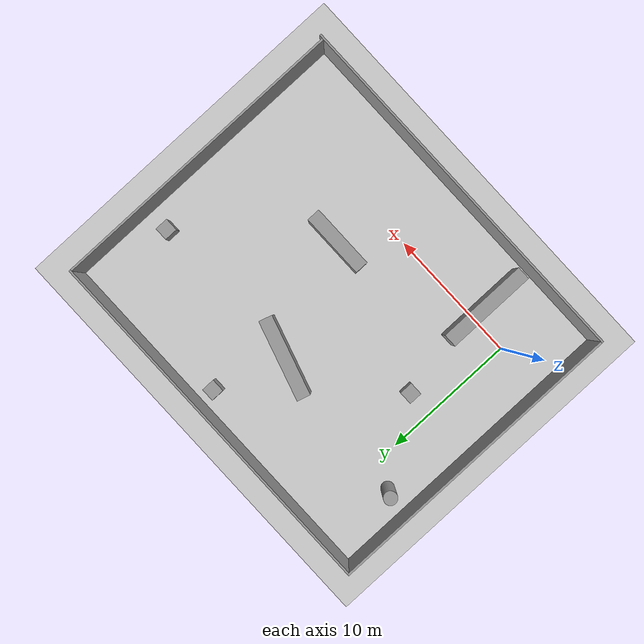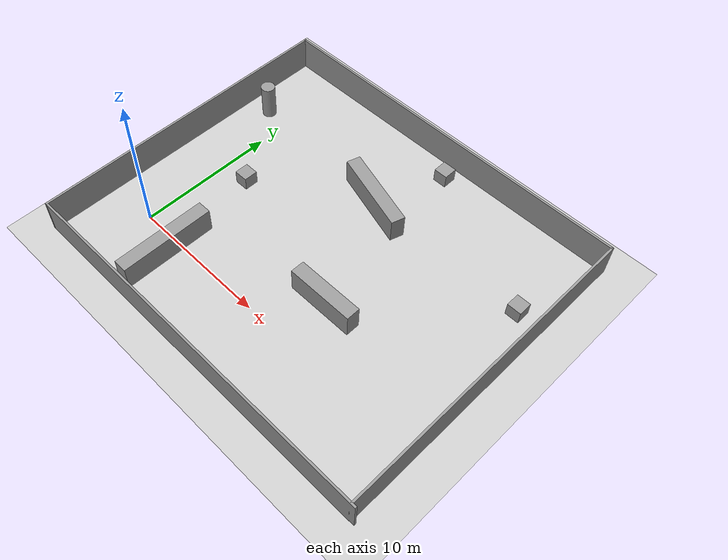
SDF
<sdf version="1.7">
 <world name="default">
  <light name="sun" type="directional">
   <pose>0 0 10 0 -0 0</pose>
   <diffuse>0.8 0.8 0.8 1</diffuse>
   <specular>0.2 0.2 0.2 1</specular>
   <attenuation>
    <range>1000</range>
    <constant>0.9</constant>
    <linear>0.01</linear>
    <quadratic>0.001</quadratic>
   </attenuation>
   <direction>-0.5 0.1 -0.9</direction>
   <spot><inner_angle>0</inner_angle><outer_angle>0</outer_angle><falloff>0</falloff></spot>
  </light>
  <model name="ground_plane">
   <static>1</static>
   <link name="link">
    <collision name="collision">
     <geometry><plane><normal>0 0 1</normal><size>100 100</size></plane></geometry>
     <surface><friction><ode><mu>100</mu><mu2>50</mu2></ode></friction></surface>
    </collision>
    <visual name="visual">
     <cast_shadows>0</cast_shadows>
     <geometry><plane><normal>0 0 1</normal><size>100 100</size></plane></geometry>
     <material>
      <script><uri>file://media/materials/scripts/gazebo.material</uri><name>Gazebo/Grey</name></script>
     </material>
    </visual>
   </link>
  </model>
  <gravity>0 0 -9.8</gravity>
  <magnetic_field>6e-06 2.3e-05 -4.2e-05</magnetic_field>
  <atmosphere type="adiabatic"/>
  <physics type="ode">
   <max_step_size>0.001</max_step_size>
   <real_time_factor>1</real_time_factor>
   <real_time_update_rate>1000</real_time_update_rate>
  </physics>
  <scene><ambient>0.4 0.4 0.4 1</ambient><background>0.7 0.7 0.7 1</background><shadows>1</shadows></scene>
  <audio><device>default</device></audio>
  <spherical_coordinates>
   <surface_model>EARTH_WGS84</surface_model>
   <latitude_deg>0</latitude_deg>
   <longitude_deg>0</longitude_deg>
   <elevation>0</elevation>
   <heading_deg>0</heading_deg>
  </spherical_coordinates>
  <model name="ped10">
   <pose>10.1036 6.46271 0 0 -0 0</pose>
   <link name="Wall_0">
    <collision name="Wall_0_Collision">
     <geometry><box><size>27.75 0.15 2.5</size></box></geometry>
     <pose>0 0 1.25 0 -0 0</pose>
    </collision>
    <visual name="Wall_0_Visual">
     <pose>0 0 1.25 0 -0 0</pose>
     <geometry><box><size>27.75 0.15 2.5</size></box></geometry>
     <material>
      <script><uri>file://media/materials/scripts/gazebo.material</uri><name>Gazebo/Grey</name></script>
      <ambient>1 1 1 1</ambient>
     </material>
     <meta><layer>0</layer></meta>
    </visual>
    <pose>0 -11.425 0 0 -0 0</pose>
   </link>
   <link name="Wall_2">
    <collision name="Wall_2_Collision">
     <geometry><box><size>23 0.15 2.5</size></box></geometry>
     <pose>0 0 1.25 0 -0 0</pose>
    </collision>
    <visual name="Wall_2_Visual">
     <pose>0 0 1.25 0 -0 0</pose>
     <geometry><box><size>23 0.15 2.5</size></box></geometry>
     <material>
      <script><uri>file://media/materials/scripts/gazebo.material</uri><name>Gazebo/Grey</name></script>
      <ambient>1 1 1 1</ambient>
     </material>
     <meta><layer>0</layer></meta>
    </visual>
    <pose>-13.8 -0 0 0 -0 1.5708</pose>
   </link>
   <link name="Wall_3">
    <collision name="Wall_3_Collision">
     <geometry><box><size>27.5 0.15 2.5</size></box></geometry>
     <pose>0 0 1.25 0 -0 0</pose>
    </collision>
    <visual name="Wall_3_Visual">
     <pose>0 0 1.25 0 -0 0</pose>
     <geometry><box><size>27.5 0.15 2.5</size></box></geometry>
     <material>
      <script><uri>file://media/materials/scripts/gazebo.material</uri><name>Gazebo/Grey</name></script>
      <ambient>1 1 1 1</ambient>
     </material>
     <meta><layer>0</layer></meta>
    </visual>
    <pose>-0.125 11.425 0 0 -0 0</pose>
   </link>
   <link name="Wall_4">
    <collision name="Wall_4_Collision">
     <geometry><box><size>23 0.15 2.5</size></box></geometry>
     <pose>0 0 1.25 0 -0 0</pose>
    </collision>
    <visual name="Wall_4_Visual">
     <pose>0 0 1.25 0 -0 0</pose>
     <geometry><box><size>23 0.15 2.5</size></box></geometry>
     <material>
      <script><uri>file://media/materials/scripts/gazebo.material</uri><name>Gazebo/Grey</name></script>
      <ambient>1 1 1 1</ambient>
     </material>
     <meta><layer>0</layer></meta>
    </visual>
    <pose>13.55 -0 0 0 -0 -1.5708</pose>
   </link>
   <static>1</static>
  </model>
  <model name="unit_box">
   <pose>3.07789 -0.994987 0.895452 -0.001776 3e-06 0.001656</pose>
   <link name="link">
    <inertial>
     <mass>1</mass>
     <inertia>
      <ixx>0.166667</ixx>
      <ixy>0</ixy>
      <ixz>0</ixz>
      <iyy>0.166667</iyy>
      <iyz>0</iyz>
      <izz>0.166667</izz>
     </inertia>
    </inertial>
    <collision name="collision"><geometry><box><size>1 6.75561 1.80289</size></box></geometry></collision>
    <visual name="visual">
     <geometry><box><size>1 6.75561 1.80289</size></box></geometry>
     <material>
      <script><name>Gazebo/Grey</name><uri>file://media/materials/scripts/gazebo.material</uri></script>
     </material>
    </visual>
   </link>
  </model>
  <model name="unit_box_clone">
   <pose>9.77016 11.3992 0.901467 0 -3.4e-05 1.27774</pose>
   <link name="link">
    <inertial>
     <mass>1</mass>
     <inertia>
      <ixx>0.166667</ixx>
      <ixy>0</ixy>
      <ixz>0</ixz>
      <iyy>0.166667</iyy>
      <iyz>0</iyz>
      <izz>0.166667</izz>
     </inertia>
    </inertial>
    <collision name="collision"><geometry><box><size>1 5.98011 1.8029</size></box></geometry></collision>
    <visual name="visual">
     <geometry><box><size>1 5.98011 1.8029</size></box></geometry>
     <material>
      <script><name>Gazebo/Grey</name><uri>file://media/materials/scripts/gazebo.material</uri></script>
     </material>
    </visual>
   </link>
  </model>
  <model name="unit_cylinder">
   <pose>-1.82977 12.4221 1.25733 0 0 -3.7e-05</pose>
   <link name="link">
    <inertial>
     <mass>1</mass>
     <inertia><ixx>0.145833</ixx><ixy>0</ixy><ixz>0</ixz><iyy>0.145833</iyy><iyz>0</iyz><izz>0.125</izz></inertia>
    </inertial>
    <collision name="collision">
     <geometry><cylinder><radius>0.5</radius><length>2.51466</length></cylinder></geometry>
    </collision>
    <visual name="visual">
     <geometry><cylinder><radius>0.5</radius><length>2.51466</length></cylinder></geometry>
     <material>
      <script><name>Gazebo/Grey</name><uri>file://media/materials/scripts/gazebo.material</uri></script>
     </material>
    </visual>
   </link>
  </model>
  <model name="unit_box_0">
   <pose>2.11682 6.73785 0.499995 0 1e-05 0</pose>
   <link name="link">
    <inertial>
     <mass>1</mass>
     <inertia>
      <ixx>0.166667</ixx>
      <ixy>0</ixy>
      <ixz>0</ixz>
      <iyy>0.166667</iyy>
      <iyz>0</iyz>
      <izz>0.166667</izz>
     </inertia>
    </inertial>
    <collision name="collision"><geometry><box><size>1 1 1</size></box></geometry></collision>
    <visual name="visual">
     <geometry><box><size>1 1 1</size></box></geometry>
     <material>
      <script><name>Gazebo/Grey</name><uri>file://media/materials/scripts/gazebo.material</uri></script>
     </material>
    </visual>
   </link>
  </model>
  <model name="unit_box_clone_0">
   <pose>13.1581 3.42703 0.900314 0.000469 -0 1.57034</pose>
   <link name="link">
    <inertial>
     <mass>1</mass>
     <inertia>
      <ixx>0.166667</ixx>
      <ixy>0</ixy>
      <ixz>0</ixz>
      <iyy>0.166667</iyy>
      <iyz>0</iyz>
      <izz>0.166667</izz>
     </inertia>
    </inertial>
    <collision name="collision"><geometry><box><size>1 4.84375 1.8029</size></box></geometry></collision>
    <visual name="visual">
     <geometry><box><size>1 4.84375 1.8029</size></box></geometry>
     <material>
      <script><name>Gazebo/Grey</name><uri>file://media/materials/scripts/gazebo.material</uri></script>
     </material>
    </visual>
   </link>
  </model>
  <model name="unit_box_1">
   <pose>21.77 11.4831 0.499995 0 1e-05 0</pose>
   <link name="link">
    <inertial>
     <mass>1</mass>
     <inertia>
      <ixx>0.166667</ixx>
      <ixy>0</ixy>
      <ixz>0</ixz>
      <iyy>0.166667</iyy>
      <iyz>0</iyz>
      <izz>0.166667</izz>
     </inertia>
    </inertial>
    <collision name="collision"><geometry><box><size>1 1 1</size></box></geometry></collision>
    <visual name="visual">
     <geometry><box><size>1 1 1</size></box></geometry>
     <material>
      <script><name>Gazebo/Grey</name><uri>file://media/materials/scripts/gazebo.material</uri></script>
     </material>
    </visual>
   </link>
  </model>
  <model name="unit_box_2">
   <pose>11.4783 16.5951 0.499995 -1e-05 -0 -0</pose>
   <link name="link">
    <inertial>
     <mass>1</mass>
     <inertia>
      <ixx>0.166667</ixx>
      <ixy>0</ixy>
      <ixz>0</ixz>
      <iyy>0.166667</iyy>
      <iyz>0</iyz>
      <izz>0.166667</izz>
     </inertia>
    </inertial>
    <collision name="collision"><geometry><box><size>1 1 1</size></box></geometry></collision>
    <visual name="visual">
     <geometry><box><size>1 1 1</size></box></geometry>
     <material>
      <script><name>Gazebo/Grey</name><uri>file://media/materials/scripts/gazebo.material</uri></script>
     </material>
    </visual>
   </link>
  </model>
 </world>
</sdf>
